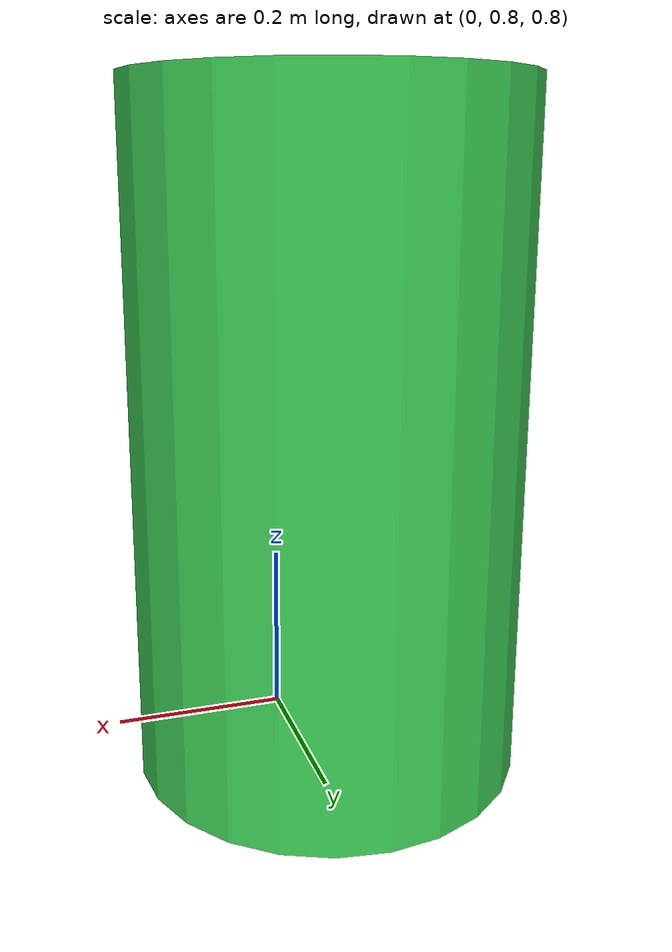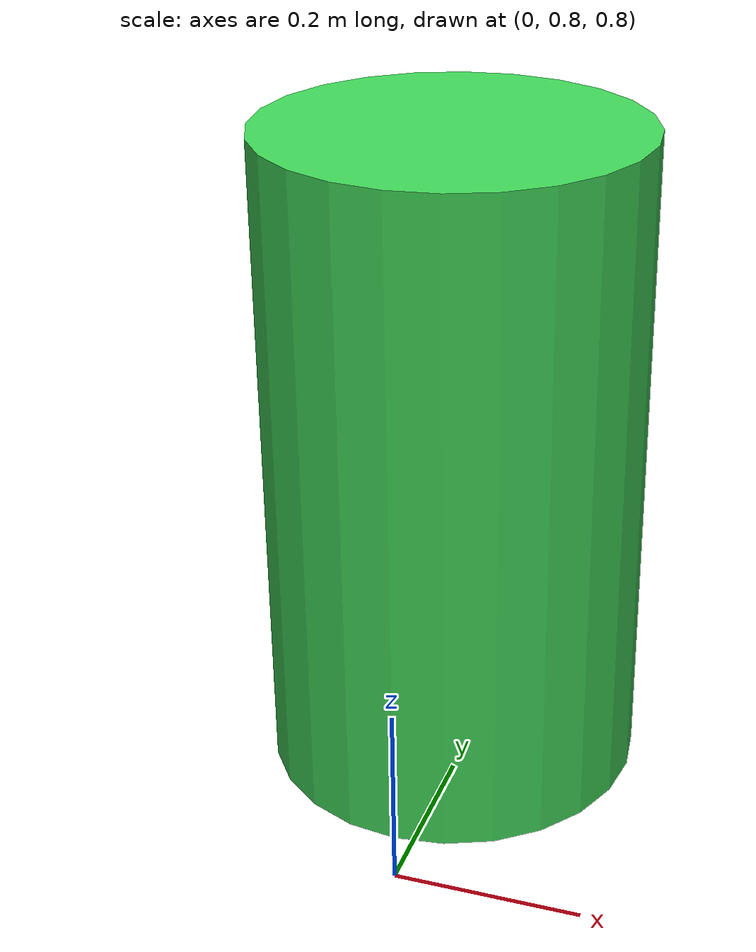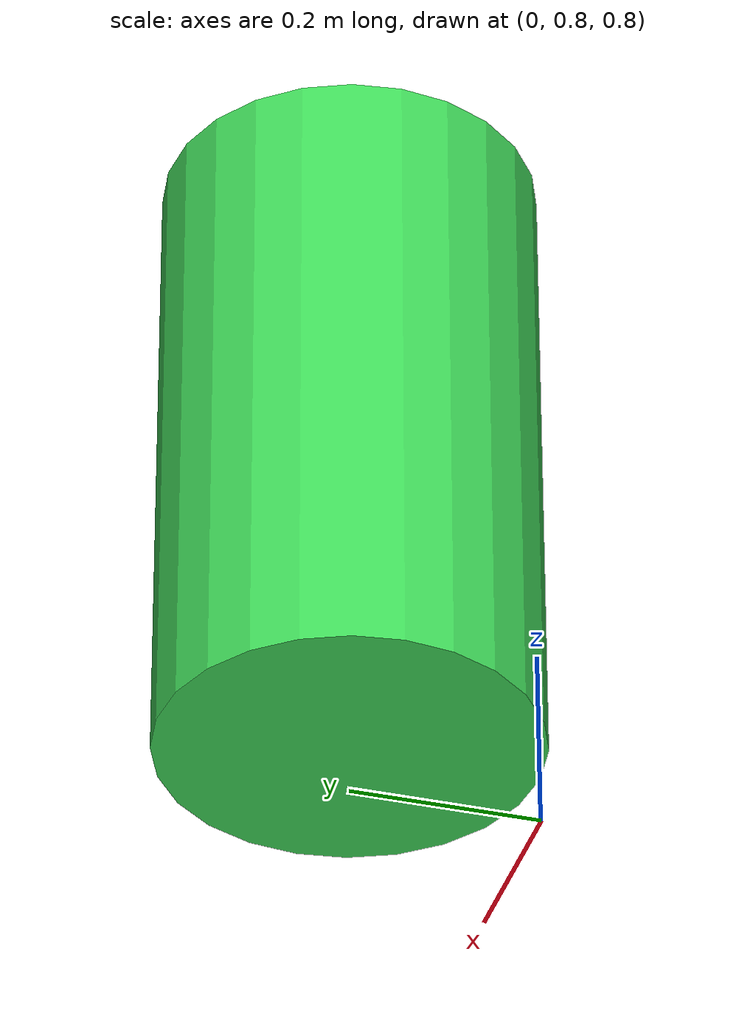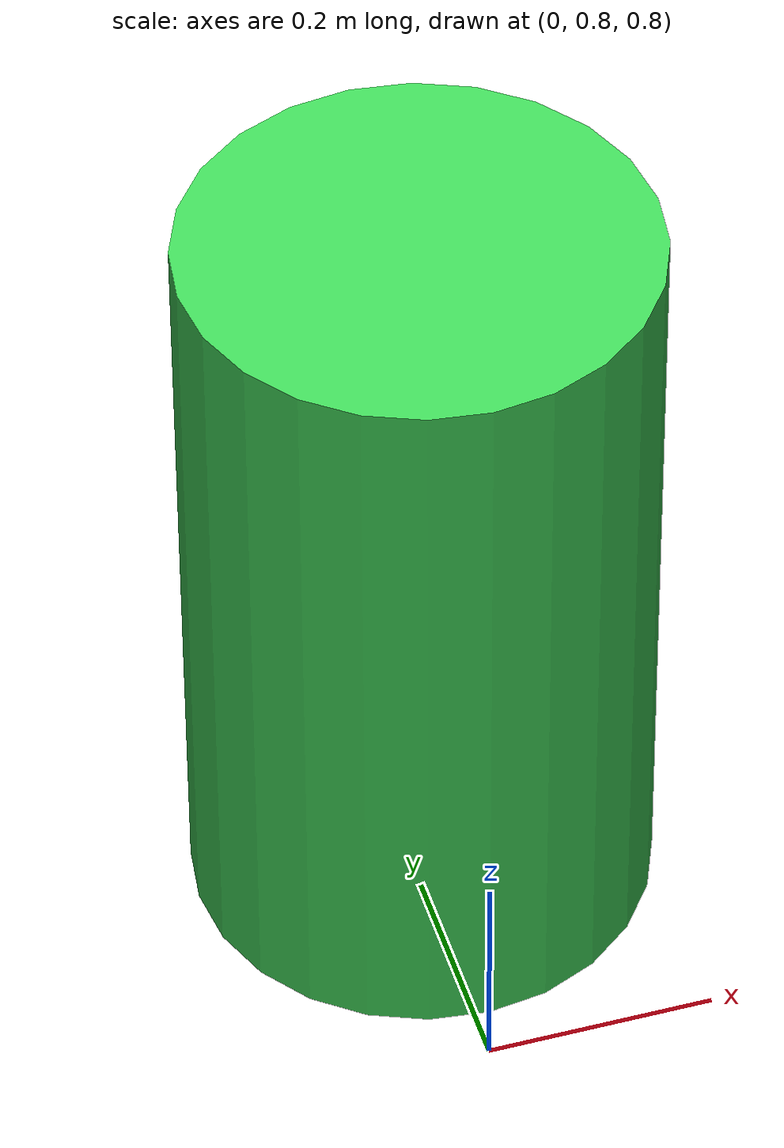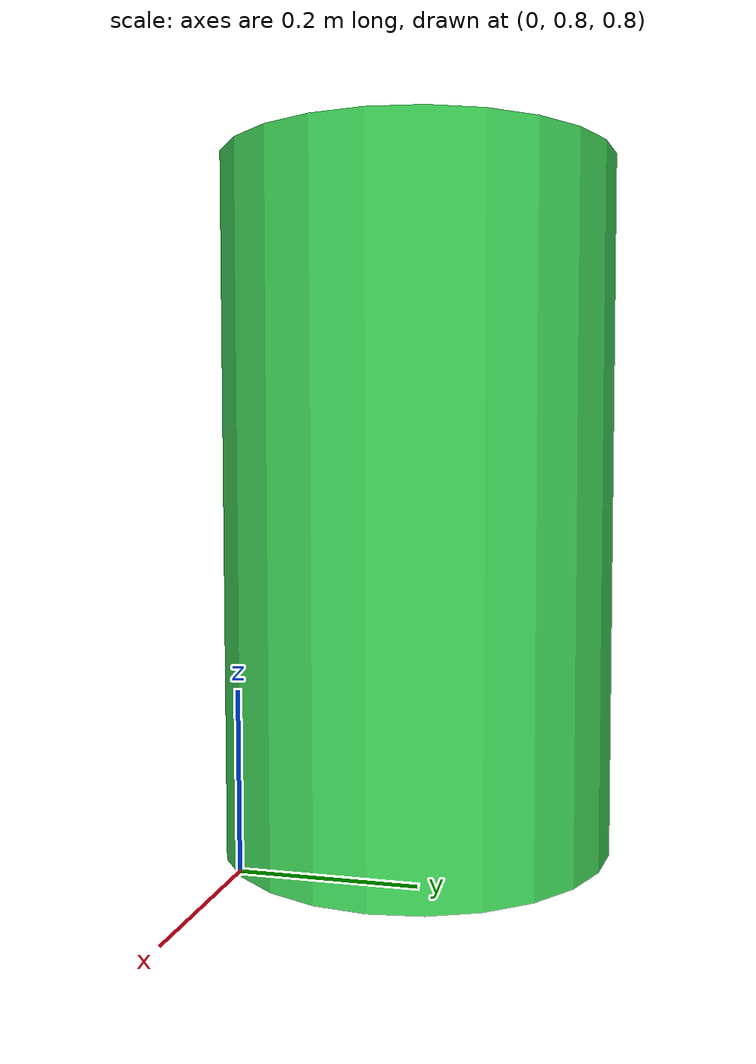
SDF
<?xml version="1.0"?>
<sdf version="1.9">
  <model name="arc_marker_counting">
    <static>true</static>
    <pose>0.0 1.0 1.2 0 0 0</pose>
    <link name="marker_link">
      <visual name="marker_visual">
        <geometry>
          <cylinder>
            <radius>0.2</radius>
            <length>0.7</length>
          </cylinder>
        </geometry>
        <material>
          <ambient>0.25 0.85 0.35 1.0</ambient>
          <diffuse>0.25 0.85 0.35 1.0</diffuse>
        </material>
      </visual>
      <collision name="marker_collision">
        <geometry>
          <cylinder>
            <radius>0.2</radius>
            <length>0.7</length>
          </cylinder>
        </geometry>
      </collision>
    </link>
  </model>
</sdf>
